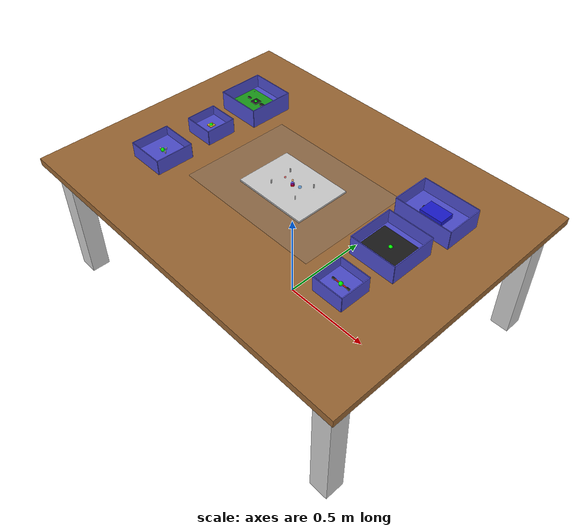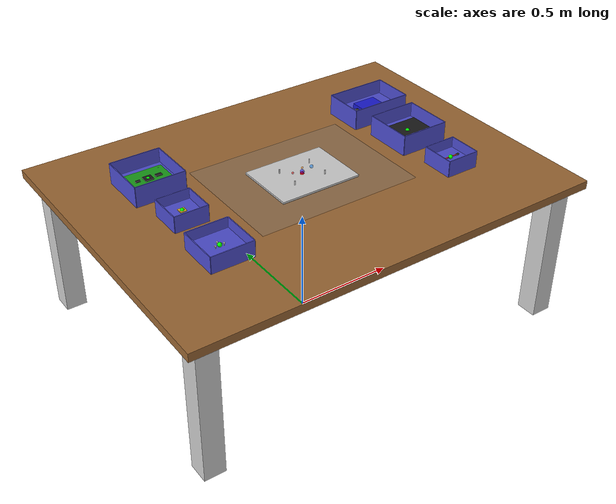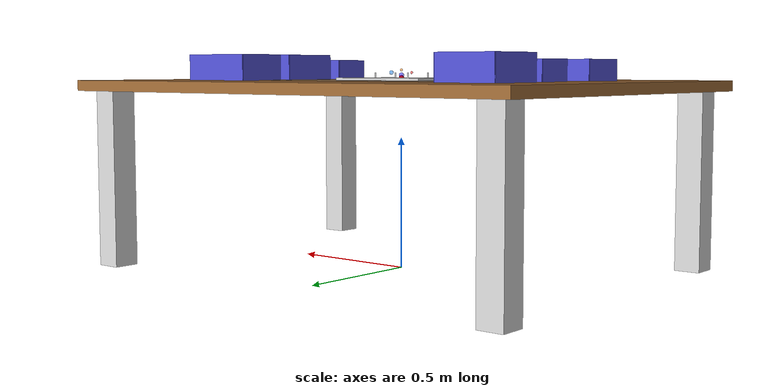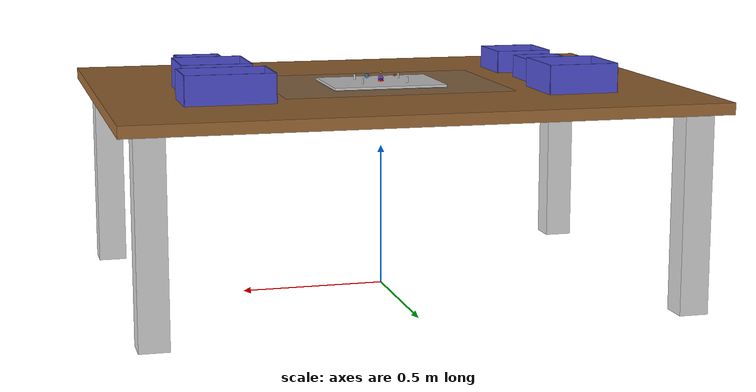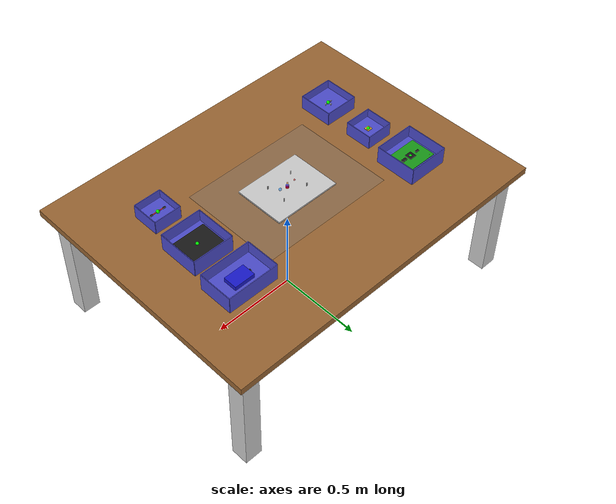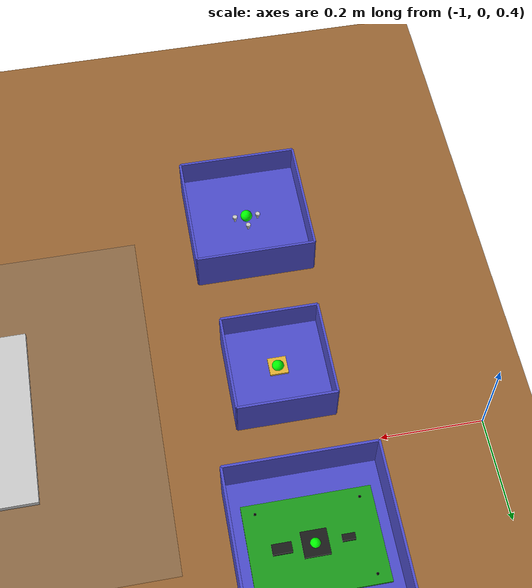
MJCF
<?xml version="1.0" ?>
<mujoco model="assembly_station">
  <compiler angle="radian" coordinate="local" inertiafromgeom="true"/>

  <asset>
    <material name="table_wood" rgba="0.6 0.4 0.2 1" metallic="0.1" roughness="0.8"/>
    <material name="bin_plastic" rgba="0.3 0.3 0.8 0.9" metallic="0.2" roughness="0.6"/>
    <material name="pcb_green" rgba="0.1 0.6 0.1 1" metallic="0.3" roughness="0.5"/>
    <material name="metal_silver" rgba="0.8 0.8 0.8 1" metallic="0.95" roughness="0.2"/>
    <material name="plastic_black" rgba="0.1 0.1 0.1 1" metallic="0.1" roughness="0.7"/>
    <material name="battery_blue" rgba="0.1 0.1 0.8 1" metallic="0.3" roughness="0.5"/>
    <material name="cpu_gold" rgba="0.9 0.7 0.2 1" metallic="0.9" roughness="0.1"/>
    <material name="cable_red" rgba="0.8 0.1 0.1 1" metallic="0.2" roughness="0.6"/>
    <material name="marker_yellow" rgba="1 1 0 0.5" metallic="0" roughness="1"/>
    <material name="grid_gray" rgba="0.5 0.5 0.5 0.3" metallic="0" roughness="1"/>
    <texture name="grid" type="2d" builtin="checker" rgb1="0.7 0.7 0.7" rgb2="0.5 0.5 0.5" width="512" height="512"/>
  </asset>

  <worldbody>
    <!-- Assembly Table -->
    <body name="table" pos="0 0 0">
      <geom name="table_top" type="box" size="1.0 0.75 0.02" pos="0 0 0.7" material="table_wood" contype="1" conaffinity="1"/>
      <geom name="table_leg1" type="box" size="0.05 0.05 0.35" pos="-0.9 -0.65 0.35" material="metal_silver"/>
      <geom name="table_leg2" type="box" size="0.05 0.05 0.35" pos="0.9 -0.65 0.35" material="metal_silver"/>
      <geom name="table_leg3" type="box" size="0.05 0.05 0.35" pos="-0.9 0.65 0.35" material="metal_silver"/>
      <geom name="table_leg4" type="box" size="0.05 0.05 0.35" pos="0.9 0.65 0.35" material="metal_silver"/>

      <!-- Work Area Grid Markers -->
      <site name="work_center" pos="0 0 0.73" size="0.01" rgba="1 0 0 1"/>
      <geom name="work_grid" type="box" size="0.4 0.3 0.001" pos="0 0 0.721" material="grid_gray" contype="0"/>

      <!-- Component Bins -->
      <!-- PCB Bin -->
      <body name="pcb_bin" pos="-0.6 0.3 0.72">
        <geom name="pcb_bin_base" type="box" size="0.12 0.12 0.03" material="bin_plastic" contype="1"/>
        <geom name="pcb_bin_wall1" type="box" size="0.12 0.002 0.05" pos="0 -0.12 0.05" material="bin_plastic"/>
        <geom name="pcb_bin_wall2" type="box" size="0.12 0.002 0.05" pos="0 0.12 0.05" material="bin_plastic"/>
        <geom name="pcb_bin_wall3" type="box" size="0.002 0.12 0.05" pos="-0.12 0 0.05" material="bin_plastic"/>
        <geom name="pcb_bin_wall4" type="box" size="0.002 0.12 0.05" pos="0.12 0 0.05" material="bin_plastic"/>
        <site name="pcb_pickup" pos="0 0 0.04" size="0.01" rgba="0 1 0 1"/>
      </body>

      <!-- CPU Bin -->
      <body name="cpu_bin" pos="-0.6 0 0.72">
        <geom name="cpu_bin_base" type="box" size="0.08 0.08 0.03" material="bin_plastic" contype="1"/>
        <geom name="cpu_bin_wall1" type="box" size="0.08 0.002 0.04" pos="0 -0.08 0.04" material="bin_plastic"/>
        <geom name="cpu_bin_wall2" type="box" size="0.08 0.002 0.04" pos="0 0.08 0.04" material="bin_plastic"/>
        <geom name="cpu_bin_wall3" type="box" size="0.002 0.08 0.04" pos="-0.08 0 0.04" material="bin_plastic"/>
        <geom name="cpu_bin_wall4" type="box" size="0.002 0.08 0.04" pos="0.08 0 0.04" material="bin_plastic"/>
        <site name="cpu_pickup" pos="0 0 0.04" size="0.01" rgba="0 1 0 1"/>
      </body>

      <!-- Screw Bin -->
      <body name="screw_bin" pos="-0.6 -0.3 0.72">
        <geom name="screw_bin_base" type="box" size="0.1 0.1 0.03" material="bin_plastic" contype="1"/>
        <geom name="screw_bin_wall1" type="box" size="0.1 0.002 0.04" pos="0 -0.1 0.04" material="bin_plastic"/>
        <geom name="screw_bin_wall2" type="box" size="0.1 0.002 0.04" pos="0 0.1 0.04" material="bin_plastic"/>
        <geom name="screw_bin_wall3" type="box" size="0.002 0.1 0.04" pos="-0.1 0 0.04" material="bin_plastic"/>
        <geom name="screw_bin_wall4" type="box" size="0.002 0.1 0.04" pos="0.1 0 0.04" material="bin_plastic"/>
        <site name="screw_pickup" pos="0 0 0.04" size="0.01" rgba="0 1 0 1"/>
      </body>

      <!-- Battery Bin -->
      <body name="battery_bin" pos="0.6 0.3 0.72">
        <geom name="battery_bin_base" type="box" size="0.15 0.1 0.03" material="bin_plastic" contype="1"/>
        <geom name="battery_bin_wall1" type="box" size="0.15 0.002 0.05" pos="0 -0.1 0.05" material="bin_plastic"/>
        <geom name="battery_bin_wall2" type="box" size="0.15 0.002 0.05" pos="0 0.1 0.05" material="bin_plastic"/>
        <geom name="battery_bin_wall3" type="box" size="0.002 0.1 0.05" pos="-0.15 0 0.05" material="bin_plastic"/>
        <geom name="battery_bin_wall4" type="box" size="0.002 0.1 0.05" pos="0.15 0 0.05" material="bin_plastic"/>
        <site name="battery_pickup" pos="0 0 0.04" size="0.01" rgba="0 1 0 1"/>
      </body>

      <!-- Cover Bin -->
      <body name="cover_bin" pos="0.6 0 0.72">
        <geom name="cover_bin_base" type="box" size="0.12 0.12 0.03" material="bin_plastic" contype="1"/>
        <geom name="cover_bin_wall1" type="box" size="0.12 0.002 0.05" pos="0 -0.12 0.05" material="bin_plastic"/>
        <geom name="cover_bin_wall2" type="box" size="0.12 0.002 0.05" pos="0 0.12 0.05" material="bin_plastic"/>
        <geom name="cover_bin_wall3" type="box" size="0.002 0.12 0.05" pos="-0.12 0 0.05" material="bin_plastic"/>
        <geom name="cover_bin_wall4" type="box" size="0.002 0.12 0.05" pos="0.12 0 0.05" material="bin_plastic"/>
        <site name="cover_pickup" pos="0 0 0.04" size="0.01" rgba="0 1 0 1"/>
      </body>

      <!-- Cable Bin -->
      <body name="cable_bin" pos="0.6 -0.3 0.72">
        <geom name="cable_bin_base" type="box" size="0.08 0.08 0.03" material="bin_plastic" contype="1"/>
        <geom name="cable_bin_wall1" type="box" size="0.08 0.002 0.04" pos="0 -0.08 0.04" material="bin_plastic"/>
        <geom name="cable_bin_wall2" type="box" size="0.08 0.002 0.04" pos="0 0.08 0.04" material="bin_plastic"/>
        <geom name="cable_bin_wall3" type="box" size="0.002 0.08 0.04" pos="-0.08 0 0.04" material="bin_plastic"/>
        <geom name="cable_bin_wall4" type="box" size="0.002 0.08 0.04" pos="0.08 0 0.04" material="bin_plastic"/>
        <site name="cable_pickup" pos="0 0 0.04" size="0.01" rgba="0 1 0 1"/>
      </body>

      <!-- Assembly Fixture (central work area) -->
      <body name="fixture" pos="0 0 0.72">
        <geom name="fixture_base" type="box" size="0.2 0.15 0.01" material="metal_silver" contype="1"/>
        <!-- PCB mounting posts -->
        <geom name="mount_post1" type="cylinder" size="0.003 0.015" pos="-0.08 -0.06 0.015" material="metal_silver"/>
        <geom name="mount_post2" type="cylinder" size="0.003 0.015" pos="0.08 -0.06 0.015" material="metal_silver"/>
        <geom name="mount_post3" type="cylinder" size="0.003 0.015" pos="-0.08 0.06 0.015" material="metal_silver"/>
        <geom name="mount_post4" type="cylinder" size="0.003 0.015" pos="0.08 0.06 0.015" material="metal_silver"/>

        <!-- Assembly alignment markers -->
        <site name="pcb_placement" pos="0 0 0.02" size="0.01" rgba="0 0 1 0.5"/>
        <site name="cpu_placement" pos="0 0 0.04" size="0.005" rgba="1 0.5 0 0.5"/>
        <site name="battery_placement" pos="0.05 0 0.03" size="0.008" rgba="0 0.5 1 0.5"/>
        <site name="cable_placement" pos="-0.05 0 0.03" size="0.005" rgba="1 0 0 0.5"/>
      </body>
    </body>

    <!-- Assembly Components (initially in bins) -->
    <!-- Main PCB -->
    <body name="pcb" pos="-0.6 0.3 0.76">
      <freejoint/>
      <geom name="pcb_board" type="box" size="0.1 0.075 0.002" material="pcb_green" contype="2" conaffinity="2" mass="0.05"/>
      <!-- PCB mounting holes -->
      <site name="pcb_hole1" pos="-0.08 -0.06 0" size="0.003" rgba="0 0 0 1"/>
      <site name="pcb_hole2" pos="0.08 -0.06 0" size="0.003" rgba="0 0 0 1"/>
      <site name="pcb_hole3" pos="-0.08 0.06 0" size="0.003" rgba="0 0 0 1"/>
      <site name="pcb_hole4" pos="0.08 0.06 0" size="0.003" rgba="0 0 0 1"/>
      <!-- CPU socket -->
      <geom name="cpu_socket" type="box" size="0.02 0.02 0.003" pos="0 0 0.003" material="plastic_black" contype="2"/>
      <!-- Battery connector -->
      <geom name="battery_connector" type="box" size="0.015 0.008 0.004" pos="0.05 0 0.004" material="plastic_black" contype="2"/>
      <!-- Cable connector -->
      <geom name="cable_connector" type="box" size="0.01 0.005 0.004" pos="-0.05 0 0.004" material="plastic_black" contype="2"/>
    </body>

    <!-- CPU Chip -->
    <body name="cpu" pos="-0.6 0 0.76">
      <freejoint/>
      <geom name="cpu_chip" type="box" size="0.015 0.015 0.002" material="cpu_gold" contype="2" conaffinity="2" mass="0.01"/>
      <geom name="cpu_pins" type="box" size="0.012 0.012 0.001" pos="0 0 -0.002" material="metal_silver" contype="2"/>
    </body>

    <!-- Mounting Screws (4 pieces) -->
    <body name="screw1" pos="-0.6 -0.3 0.76">
      <freejoint/>
      <geom name="screw1_head" type="cylinder" size="0.004 0.002" material="metal_silver" contype="2" conaffinity="2" mass="0.002"/>
      <geom name="screw1_shaft" type="cylinder" size="0.002 0.01" pos="0 0 -0.01" material="metal_silver" contype="2"/>
    </body>

    <body name="screw2" pos="-0.58 -0.3 0.76">
      <freejoint/>
      <geom name="screw2_head" type="cylinder" size="0.004 0.002" material="metal_silver" contype="2" conaffinity="2" mass="0.002"/>
      <geom name="screw2_shaft" type="cylinder" size="0.002 0.01" pos="0 0 -0.01" material="metal_silver" contype="2"/>
    </body>

    <body name="screw3" pos="-0.62 -0.3 0.76">
      <freejoint/>
      <geom name="screw3_head" type="cylinder" size="0.004 0.002" material="metal_silver" contype="2" conaffinity="2" mass="0.002"/>
      <geom name="screw3_shaft" type="cylinder" size="0.002 0.01" pos="0 0 -0.01" material="metal_silver" contype="2"/>
    </body>

    <body name="screw4" pos="-0.6 -0.28 0.76">
      <freejoint/>
      <geom name="screw4_head" type="cylinder" size="0.004 0.002" material="metal_silver" contype="2" conaffinity="2" mass="0.002"/>
      <geom name="screw4_shaft" type="cylinder" size="0.002 0.01" pos="0 0 -0.01" material="metal_silver" contype="2"/>
    </body>

    <!-- Battery Pack -->
    <body name="battery" pos="0.6 0.3 0.76">
      <freejoint/>
      <geom name="battery_pack" type="box" size="0.06 0.04 0.015" material="battery_blue" contype="2" conaffinity="2" mass="0.15"/>
      <geom name="battery_connector_male" type="box" size="0.012 0.006 0.003" pos="-0.06 0 0" material="plastic_black" contype="2"/>
    </body>

    <!-- Plastic Cover -->
    <body name="cover" pos="0.6 0 0.76">
      <freejoint/>
      <geom name="cover_top" type="box" size="0.105 0.08 0.002" material="plastic_black" contype="2" conaffinity="2" mass="0.03"/>
      <!-- Snap fit tabs -->
      <geom name="cover_tab1" type="box" size="0.003 0.01 0.005" pos="-0.1 0 -0.005" material="plastic_black" contype="2"/>
      <geom name="cover_tab2" type="box" size="0.003 0.01 0.005" pos="0.1 0 -0.005" material="plastic_black" contype="2"/>
      <geom name="cover_tab3" type="box" size="0.01 0.003 0.005" pos="0 -0.075 -0.005" material="plastic_black" contype="2"/>
      <geom name="cover_tab4" type="box" size="0.01 0.003 0.005" pos="0 0.075 -0.005" material="plastic_black" contype="2"/>
    </body>

    <!-- Ribbon Cable -->
    <body name="cable" pos="0.6 -0.3 0.76">
      <freejoint/>
      <geom name="cable_body" type="box" size="0.04 0.003 0.001" material="cable_red" contype="2" conaffinity="2" mass="0.005"/>
      <geom name="cable_connector1" type="box" size="0.008 0.004 0.003" pos="-0.04 0 0" material="plastic_black" contype="2"/>
      <geom name="cable_connector2" type="box" size="0.008 0.004 0.003" pos="0.04 0 0" material="plastic_black" contype="2"/>
    </body>
  </worldbody>
</mujoco>
